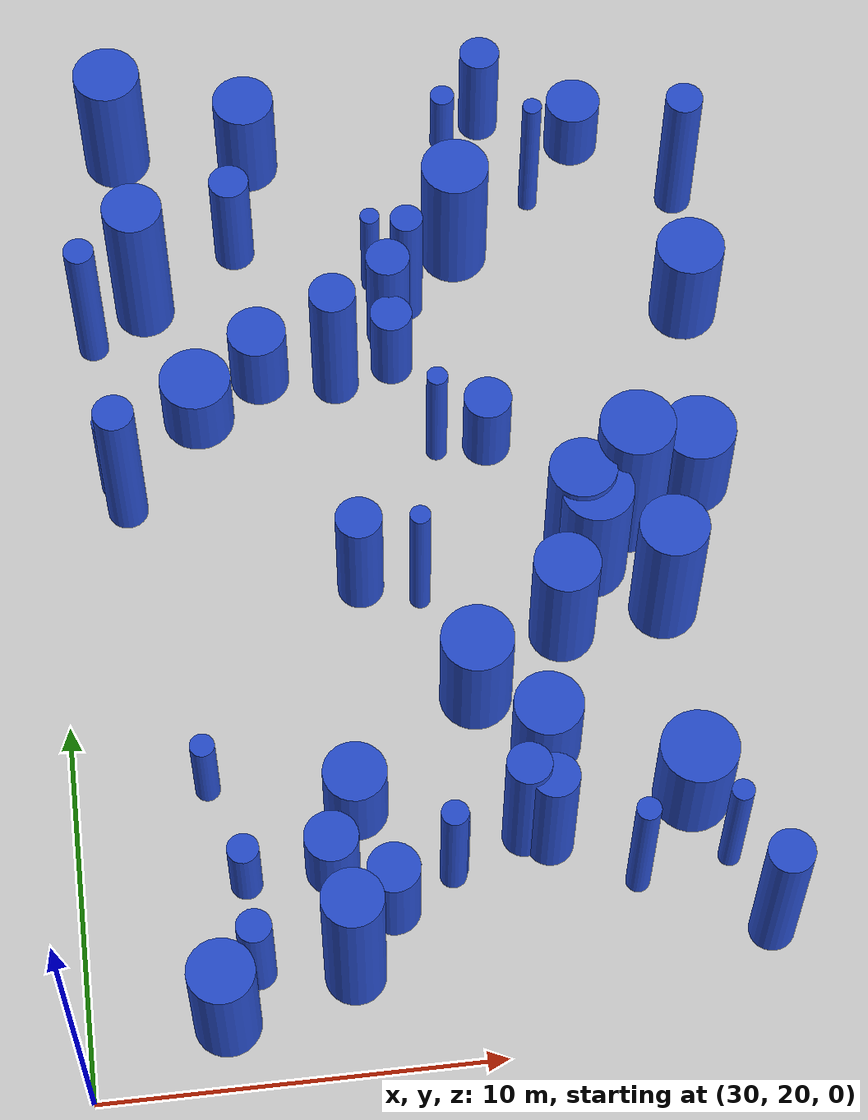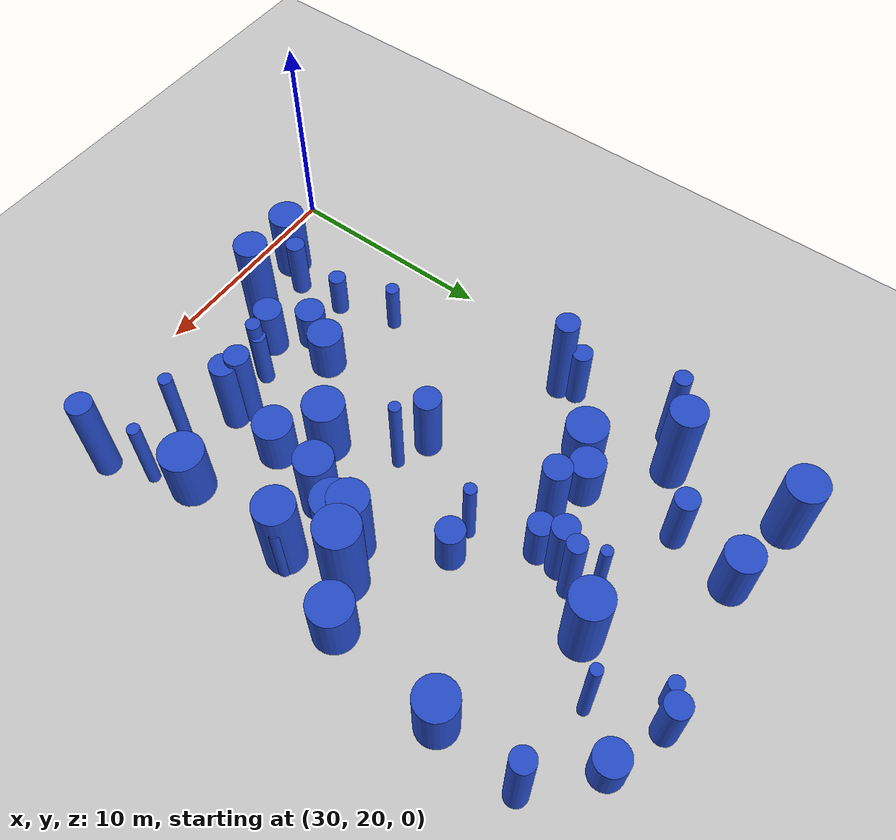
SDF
<sdf version="1.6">
 <world name="default">
  <model name="ground_plane">
   <static>1</static>
   <link name="link">
    <collision name="collision">
     <geometry><plane><normal>0 0 1</normal><size>100 100</size></plane></geometry>
     <surface><friction><ode><mu>100</mu><mu2>50</mu2></ode></friction></surface>
    </collision>
    <visual name="visual">
     <cast_shadows>0</cast_shadows>
     <geometry><plane><normal>0 0 1</normal><size>100 100</size></plane></geometry>
     <material>
      <script><uri>file://media/materials/scripts/gazebo.material</uri><name>Gazebo/Grey</name></script>
     </material>
    </visual>
   </link>
  </model>
  <model name="2">
   <static>0</static>
   <link name="link">
    <inertial>
     <mass>2</mass>
     <inertia><ixx>1.9179</ixx><ixy>0</ixy><ixz>0</ixz><iyy>1.9179</iyy><iyz>0</iyz><izz>0.974837</izz></inertia>
    </inertial>
    <collision name="collision">
     <geometry><cylinder><length>2.92966</length><radius>0.987338</radius></cylinder></geometry>
     <surface><contact><collide_without_contact>1</collide_without_contact></contact></surface>
    </collision>
    <visual name="visual">
     <geometry><cylinder><length>2.92966</length><radius>0.987338</radius></cylinder></geometry>
     <material>
      <script><uri>file://media/materials/scripts/gazebo.material</uri><name>Gazebo/Blue</name></script>
     </material>
    </visual>
    <gravity>0</gravity>
   </link>
   <pose>45.4163 26.3645 1.46483 0 -0 0</pose>
  </model>
  <model name="8">
   <static>0</static>
   <link name="link">
    <inertial>
     <mass>2</mass>
     <inertia><ixx>3.23009</ixx><ixy>0</ixy><ixz>0</ixz><iyy>3.23009</iyy><iyz>0</iyz><izz>0.313267</izz></inertia>
    </inertial>
    <collision name="collision">
     <geometry><cylinder><length>4.29427</length><radius>0.559703</radius></cylinder></geometry>
     <surface><contact><collide_without_contact>1</collide_without_contact></contact></surface>
    </collision>
    <visual name="visual">
     <geometry><cylinder><length>4.29427</length><radius>0.559703</radius></cylinder></geometry>
     <material>
      <script><uri>file://media/materials/scripts/gazebo.material</uri><name>Gazebo/Blue</name></script>
     </material>
    </visual>
    <gravity>0</gravity>
   </link>
   <pose>41.0947 25.7566 2.14713 0 -0 0</pose>
  </model>
  <model name="13">
   <static>0</static>
   <link name="link">
    <inertial>
     <mass>2</mass>
     <inertia><ixx>2.5994</ixx><ixy>0</ixy><ixz>0</ixz><iyy>2.5994</iyy><iyz>0</iyz><izz>0.0800748</izz></inertia>
    </inertial>
    <collision name="collision">
     <geometry><cylinder><length>3.91869</length><radius>0.282975</radius></cylinder></geometry>
     <surface><contact><collide_without_contact>1</collide_without_contact></contact></surface>
    </collision>
    <visual name="visual">
     <geometry><cylinder><length>3.91869</length><radius>0.282975</radius></cylinder></geometry>
     <material>
      <script><uri>file://media/materials/scripts/gazebo.material</uri><name>Gazebo/Blue</name></script>
     </material>
    </visual>
    <gravity>0</gravity>
   </link>
   <pose>46.0991 24.6597 1.95935 0 -0 0</pose>
  </model>
  <model name="15">
   <static>0</static>
   <link name="link">
    <inertial>
     <mass>2</mass>
     <inertia><ixx>4.38283</ixx><ixy>0</ixy><ixz>0</ixz><iyy>4.38283</iyy><iyz>0</iyz><izz>0.572271</izz></inertia>
    </inertial>
    <collision name="collision">
     <geometry><cylinder><length>4.95784</length><radius>0.756486</radius></cylinder></geometry>
     <surface><contact><collide_without_contact>1</collide_without_contact></contact></surface>
    </collision>
    <visual name="visual">
     <geometry><cylinder><length>4.95784</length><radius>0.756486</radius></cylinder></geometry>
     <material>
      <script><uri>file://media/materials/scripts/gazebo.material</uri><name>Gazebo/Blue</name></script>
     </material>
    </visual>
    <gravity>0</gravity>
   </link>
   <pose>36.5323 22.5346 2.47892 0 -0 0</pose>
  </model>
  <model name="23">
   <static>0</static>
   <link name="link">
    <inertial>
     <mass>2</mass>
     <inertia><ixx>3.04938</ixx><ixy>0</ixy><ixz>0</ixz><iyy>3.04938</iyy><iyz>0</iyz><izz>0.188982</izz></inertia>
    </inertial>
    <collision name="collision">
     <geometry><cylinder><length>4.21062</length><radius>0.434721</radius></cylinder></geometry>
     <surface><contact><collide_without_contact>1</collide_without_contact></contact></surface>
    </collision>
    <visual name="visual">
     <geometry><cylinder><length>4.21062</length><radius>0.434721</radius></cylinder></geometry>
     <material>
      <script><uri>file://media/materials/scripts/gazebo.material</uri><name>Gazebo/Blue</name></script>
     </material>
    </visual>
    <gravity>0</gravity>
   </link>
   <pose>39.9557 41.882 2.10531 0 -0 0</pose>
  </model>
  <model name="27">
   <static>0</static>
   <link name="link">
    <inertial>
     <mass>2</mass>
     <inertia><ixx>2.24556</ixx><ixy>0</ixy><ixz>0</ixz><iyy>2.24556</iyy><iyz>0</iyz><izz>0.865007</izz></inertia>
    </inertial>
    <collision name="collision">
     <geometry><cylinder><length>3.29823</length><radius>0.930057</radius></cylinder></geometry>
     <surface><contact><collide_without_contact>1</collide_without_contact></contact></surface>
    </collision>
    <visual name="visual">
     <geometry><cylinder><length>3.29823</length><radius>0.930057</radius></cylinder></geometry>
     <material>
      <script><uri>file://media/materials/scripts/gazebo.material</uri><name>Gazebo/Blue</name></script>
     </material>
    </visual>
    <gravity>0</gravity>
   </link>
   <pose>40.362 29.7446 1.64912 0 -0 0</pose>
  </model>
  <model name="31">
   <static>0</static>
   <link name="link">
    <inertial>
     <mass>2</mass>
     <inertia><ixx>2.46305</ixx><ixy>0</ixy><ixz>0</ixz><iyy>2.46305</iyy><iyz>0</iyz><izz>0.114316</izz></inertia>
    </inertial>
    <collision name="collision">
     <geometry><cylinder><length>3.79939</length><radius>0.338106</radius></cylinder></geometry>
     <surface><contact><collide_without_contact>1</collide_without_contact></contact></surface>
    </collision>
    <visual name="visual">
     <geometry><cylinder><length>3.79939</length><radius>0.338106</radius></cylinder></geometry>
     <material>
      <script><uri>file://media/materials/scripts/gazebo.material</uri><name>Gazebo/Blue</name></script>
     </material>
    </visual>
    <gravity>0</gravity>
   </link>
   <pose>39.2114 24.8963 1.89969 0 -0 0</pose>
  </model>
  <model name="40">
   <static>0</static>
   <link name="link">
    <inertial>
     <mass>2</mass>
     <inertia><ixx>2.09955</ixx><ixy>0</ixy><ixz>0</ixz><iyy>2.09955</iyy><iyz>0</iyz><izz>0.83864</izz></inertia>
    </inertial>
    <collision name="collision">
     <geometry><cylinder><length>3.17512</length><radius>0.915773</radius></cylinder></geometry>
     <surface><contact><collide_without_contact>1</collide_without_contact></contact></surface>
    </collision>
    <visual name="visual">
     <geometry><cylinder><length>3.17512</length><radius>0.915773</radius></cylinder></geometry>
     <material>
      <script><uri>file://media/materials/scripts/gazebo.material</uri><name>Gazebo/Blue</name></script>
     </material>
    </visual>
    <gravity>0</gravity>
   </link>
   <pose>47.4771 40.8684 1.58756 0 -0 0</pose>
  </model>
  <model name="49">
   <static>0</static>
   <link name="link">
    <inertial>
     <mass>2</mass>
     <inertia><ixx>1.4206</ixx><ixy>0</ixy><ixz>0</ixz><iyy>1.4206</iyy><iyz>0</iyz><izz>0.438407</izz></inertia>
    </inertial>
    <collision name="collision">
     <geometry><cylinder><length>2.68485</length><radius>0.662123</radius></cylinder></geometry>
     <surface><contact><collide_without_contact>1</collide_without_contact></contact></surface>
    </collision>
    <visual name="visual">
     <geometry><cylinder><length>2.68485</length><radius>0.662123</radius></cylinder></geometry>
     <material>
      <script><uri>file://media/materials/scripts/gazebo.material</uri><name>Gazebo/Blue</name></script>
     </material>
    </visual>
    <gravity>0</gravity>
   </link>
   <pose>37.6585 24.1439 1.34242 0 -0 0</pose>
  </model>
  <model name="50">
   <static>0</static>
   <link name="link">
    <inertial>
     <mass>2</mass>
     <inertia><ixx>3.40213</ixx><ixy>0</ixy><ixz>0</ixz><iyy>3.40213</iyy><iyz>0</iyz><izz>0.758243</izz></inertia>
    </inertial>
    <collision name="collision">
     <geometry><cylinder><length>4.25888</length><radius>0.870771</radius></cylinder></geometry>
     <surface><contact><collide_without_contact>1</collide_without_contact></contact></surface>
    </collision>
    <visual name="visual">
     <geometry><cylinder><length>4.25888</length><radius>0.870771</radius></cylinder></geometry>
     <material>
      <script><uri>file://media/materials/scripts/gazebo.material</uri><name>Gazebo/Blue</name></script>
     </material>
    </visual>
    <gravity>0</gravity>
   </link>
   <pose>43.5227 33.7385 2.12944 0 -0 0</pose>
  </model>
  <model name="57">
   <static>0</static>
   <link name="link">
    <inertial>
     <mass>2</mass>
     <inertia><ixx>3.68836</ixx><ixy>0</ixy><ixz>0</ixz><iyy>3.68836</iyy><iyz>0</iyz><izz>0.162309</izz></inertia>
    </inertial>
    <collision name="collision">
     <geometry><cylinder><length>4.65223</length><radius>0.402876</radius></cylinder></geometry>
     <surface><contact><collide_without_contact>1</collide_without_contact></contact></surface>
    </collision>
    <visual name="visual">
     <geometry><cylinder><length>4.65223</length><radius>0.402876</radius></cylinder></geometry>
     <material>
      <script><uri>file://media/materials/scripts/gazebo.material</uri><name>Gazebo/Blue</name></script>
     </material>
    </visual>
    <gravity>0</gravity>
   </link>
   <pose>31.3037 41.4852 2.32611 0 -0 0</pose>
  </model>
  <model name="61">
   <static>0</static>
   <link name="link">
    <inertial>
     <mass>2</mass>
     <inertia><ixx>1.26514</ixx><ixy>0</ixy><ixz>0</ixz><iyy>1.26514</iyy><iyz>0</iyz><izz>0.651756</izz></inertia>
    </inertial>
    <collision name="collision">
     <geometry><cylinder><length>2.37394</length><radius>0.807314</radius></cylinder></geometry>
     <surface><contact><collide_without_contact>1</collide_without_contact></contact></surface>
    </collision>
    <visual name="visual">
     <geometry><cylinder><length>2.37394</length><radius>0.807314</radius></cylinder></geometry>
     <material>
      <script><uri>file://media/materials/scripts/gazebo.material</uri><name>Gazebo/Blue</name></script>
     </material>
    </visual>
    <gravity>0</gravity>
   </link>
   <pose>36.9963 26.9063 1.18697 0 -0 0</pose>
  </model>
  <model name="62">
   <static>0</static>
   <link name="link">
    <inertial>
     <mass>2</mass>
     <inertia><ixx>4.60937</ixx><ixy>0</ixy><ixz>0</ixz><iyy>4.60937</iyy><iyz>0</iyz><izz>0.935499</izz></inertia>
    </inertial>
    <collision name="collision">
     <geometry><cylinder><length>4.98495</length><radius>0.967212</radius></cylinder></geometry>
     <surface><contact><collide_without_contact>1</collide_without_contact></contact></surface>
    </collision>
    <visual name="visual">
     <geometry><cylinder><length>4.98495</length><radius>0.967212</radius></cylinder></geometry>
     <material>
      <script><uri>file://media/materials/scripts/gazebo.material</uri><name>Gazebo/Blue</name></script>
     </material>
    </visual>
    <gravity>0</gravity>
   </link>
   <pose>44.9759 34.4635 2.49248 0 -0 0</pose>
  </model>
  <model name="68">
   <static>0</static>
   <link name="link">
    <inertial>
     <mass>2</mass>
     <inertia>
      <ixx>3.19713</ixx>
      <ixy>0</ixy>
      <ixz>0</ixz>
      <iyy>3.19713</iyy>
      <iyz>0</iyz>
      <izz>0.0925744</izz>
     </inertia>
    </inertial>
    <collision name="collision">
     <geometry><cylinder><length>4.34799</length><radius>0.30426</radius></cylinder></geometry>
     <surface><contact><collide_without_contact>1</collide_without_contact></contact></surface>
    </collision>
    <visual name="visual">
     <geometry><cylinder><length>4.34799</length><radius>0.30426</radius></cylinder></geometry>
     <material>
      <script><uri>file://media/materials/scripts/gazebo.material</uri><name>Gazebo/Blue</name></script>
     </material>
    </visual>
    <gravity>0</gravity>
   </link>
   <pose>43.7363 24.2398 2.174 0 -0 0</pose>
  </model>
  <model name="69">
   <static>0</static>
   <link name="link">
    <inertial>
     <mass>2</mass>
     <inertia>
      <ixx>3.33102</ixx>
      <ixy>0</ixy>
      <ixz>0</ixz>
      <iyy>3.33102</iyy>
      <iyz>0</iyz>
      <izz>0.0721919</izz>
     </inertia>
    </inertial>
    <collision name="collision">
     <geometry><cylinder><length>4.4463</length><radius>0.268686</radius></cylinder></geometry>
     <surface><contact><collide_without_contact>1</collide_without_contact></contact></surface>
    </collision>
    <visual name="visual">
     <geometry><cylinder><length>4.4463</length><radius>0.268686</radius></cylinder></geometry>
     <material>
      <script><uri>file://media/materials/scripts/gazebo.material</uri><name>Gazebo/Blue</name></script>
     </material>
    </visual>
    <gravity>0</gravity>
   </link>
   <pose>39.2791 32.7325 2.22315 0 -0 0</pose>
  </model>
  <model name="70">
   <static>0</static>
   <link name="link">
    <inertial>
     <mass>2</mass>
     <inertia><ixx>4.21383</ixx><ixy>0</ixy><ixz>0</ixz><iyy>4.21383</iyy><iyz>0</iyz><izz>0.281293</izz></inertia>
    </inertial>
    <collision name="collision">
     <geometry><cylinder><length>4.94359</length><radius>0.53037</radius></cylinder></geometry>
     <surface><contact><collide_without_contact>1</collide_without_contact></contact></surface>
    </collision>
    <visual name="visual">
     <geometry><cylinder><length>4.94359</length><radius>0.53037</radius></cylinder></geometry>
     <material>
      <script><uri>file://media/materials/scripts/gazebo.material</uri><name>Gazebo/Blue</name></script>
     </material>
    </visual>
    <gravity>0</gravity>
   </link>
   <pose>31.894 36.255 2.4718 0 -0 0</pose>
  </model>
  <model name="72">
   <static>0</static>
   <link name="link">
    <inertial>
     <mass>2</mass>
     <inertia><ixx>1.94318</ixx><ixy>0</ixy><ixz>0</ixz><iyy>1.94318</iyy><iyz>0</iyz><izz>0.697491</izz></inertia>
    </inertial>
    <collision name="collision">
     <geometry><cylinder><length>3.093</length><radius>0.835159</radius></cylinder></geometry>
     <surface><contact><collide_without_contact>1</collide_without_contact></contact></surface>
    </collision>
    <visual name="visual">
     <geometry><cylinder><length>3.093</length><radius>0.835159</radius></cylinder></geometry>
     <material>
      <script><uri>file://media/materials/scripts/gazebo.material</uri><name>Gazebo/Blue</name></script>
     </material>
    </visual>
    <gravity>0</gravity>
   </link>
   <pose>36.0041 47.1064 1.5465 0 -0 0</pose>
  </model>
  <model name="78">
   <static>0</static>
   <link name="link">
    <inertial>
     <mass>2</mass>
     <inertia><ixx>1.37906</ixx><ixy>0</ixy><ixz>0</ixz><iyy>1.37906</iyy><iyz>0</iyz><izz>0.787408</izz></inertia>
    </inertial>
    <collision name="collision">
     <geometry><cylinder><length>2.43149</length><radius>0.88736</radius></cylinder></geometry>
     <surface><contact><collide_without_contact>1</collide_without_contact></contact></surface>
    </collision>
    <visual name="visual">
     <geometry><cylinder><length>2.43149</length><radius>0.88736</radius></cylinder></geometry>
     <material>
      <script><uri>file://media/materials/scripts/gazebo.material</uri><name>Gazebo/Blue</name></script>
     </material>
    </visual>
    <gravity>0</gravity>
   </link>
   <pose>41.9661 28.1877 1.21574 0 -0 0</pose>
  </model>
  <model name="83">
   <static>0</static>
   <link name="link">
    <inertial>
     <mass>2</mass>
     <inertia>
      <ixx>1.18192</ixx>
      <ixy>0</ixy>
      <ixz>0</ixz>
      <iyy>1.18192</iyy>
      <iyz>0</iyz>
      <izz>0.0996263</izz>
     </inertia>
    </inertial>
    <collision name="collision">
     <geometry><cylinder><length>2.60627</length><radius>0.315636</radius></cylinder></geometry>
     <surface><contact><collide_without_contact>1</collide_without_contact></contact></surface>
    </collision>
    <visual name="visual">
     <geometry><cylinder><length>2.60627</length><radius>0.315636</radius></cylinder></geometry>
     <material>
      <script><uri>file://media/materials/scripts/gazebo.material</uri><name>Gazebo/Blue</name></script>
     </material>
    </visual>
    <gravity>0</gravity>
   </link>
   <pose>33.3435 27.9145 1.30313 0 -0 0</pose>
  </model>
  <model name="84">
   <static>0</static>
   <link name="link">
    <inertial>
     <mass>2</mass>
     <inertia>
      <ixx>0.948793</ixx>
      <ixy>0</ixy>
      <ixz>0</ixz>
      <iyy>0.948793</iyy>
      <iyz>0</iyz>
      <izz>0.560921</izz>
     </inertia>
    </inertial>
    <collision name="collision">
     <geometry><cylinder><length>2.0025</length><radius>0.748947</radius></cylinder></geometry>
     <surface><contact><collide_without_contact>1</collide_without_contact></contact></surface>
    </collision>
    <visual name="visual">
     <geometry><cylinder><length>2.0025</length><radius>0.748947</radius></cylinder></geometry>
     <material>
      <script><uri>file://media/materials/scripts/gazebo.material</uri><name>Gazebo/Blue</name></script>
     </material>
    </visual>
    <gravity>0</gravity>
   </link>
   <pose>45.1969 46.9008 1.00125 0 -0 0</pose>
  </model>
  <model name="86">
   <static>0</static>
   <link name="link">
    <inertial>
     <mass>2</mass>
     <inertia><ixx>3.99202</ixx><ixy>0</ixy><ixz>0</ixz><iyy>3.99202</iyy><iyz>0</iyz><izz>0.325861</izz></inertia>
    </inertial>
    <collision name="collision">
     <geometry><cylinder><length>4.79318</length><radius>0.570843</radius></cylinder></geometry>
     <surface><contact><collide_without_contact>1</collide_without_contact></contact></surface>
    </collision>
    <visual name="visual">
     <geometry><cylinder><length>4.79318</length><radius>0.570843</radius></cylinder></geometry>
     <material>
      <script><uri>file://media/materials/scripts/gazebo.material</uri><name>Gazebo/Blue</name></script>
     </material>
    </visual>
    <gravity>0</gravity>
   </link>
   <pose>46.811 22.6045 2.39659 0 -0 0</pose>
  </model>
  <model name="89">
   <static>0</static>
   <link name="link">
    <inertial>
     <mass>2</mass>
     <inertia><ixx>3.50767</ixx><ixy>0</ixy><ixz>0</ixz><iyy>3.50767</iyy><iyz>0</iyz><izz>0.380322</izz></inertia>
    </inertial>
    <collision name="collision">
     <geometry><cylinder><length>4.46151</length><radius>0.616703</radius></cylinder></geometry>
     <surface><contact><collide_without_contact>1</collide_without_contact></contact></surface>
    </collision>
    <visual name="visual">
     <geometry><cylinder><length>4.46151</length><radius>0.616703</radius></cylinder></geometry>
     <material>
      <script><uri>file://media/materials/scripts/gazebo.material</uri><name>Gazebo/Blue</name></script>
     </material>
    </visual>
    <gravity>0</gravity>
   </link>
   <pose>37.7575 39.5745 2.23075 0 -0 0</pose>
  </model>
  <model name="92">
   <static>0</static>
   <link name="link">
    <inertial>
     <mass>2</mass>
     <inertia><ixx>1.69072</ixx><ixy>0</ixy><ixz>0</ixz><iyy>1.69072</iyy><iyz>0</iyz><izz>0.127981</izz></inertia>
    </inertial>
    <collision name="collision">
     <geometry><cylinder><length>3.12416</length><radius>0.357744</radius></cylinder></geometry>
     <surface><contact><collide_without_contact>1</collide_without_contact></contact></surface>
    </collision>
    <visual name="visual">
     <geometry><cylinder><length>3.12416</length><radius>0.357744</radius></cylinder></geometry>
     <material>
      <script><uri>file://media/materials/scripts/gazebo.material</uri><name>Gazebo/Blue</name></script>
     </material>
    </visual>
    <gravity>0</gravity>
   </link>
   <pose>39.2593 25.0883 1.56208 0 -0 0</pose>
  </model>
  <model name="96">
   <static>0</static>
   <link name="link">
    <inertial>
     <mass>2</mass>
     <inertia>
      <ixx>0.805174</ixx>
      <ixy>0</ixy>
      <ixz>0</ixz>
      <iyy>0.805174</iyy>
      <iyz>0</iyz>
      <izz>0.112576</izz>
     </inertia>
    </inertial>
    <collision name="collision">
     <geometry><cylinder><length>2.11975</length><radius>0.335523</radius></cylinder></geometry>
     <surface><contact><collide_without_contact>1</collide_without_contact></contact></surface>
    </collision>
    <visual name="visual">
     <geometry><cylinder><length>2.11975</length><radius>0.335523</radius></cylinder></geometry>
     <material>
      <script><uri>file://media/materials/scripts/gazebo.material</uri><name>Gazebo/Blue</name></script>
     </material>
    </visual>
    <gravity>0</gravity>
   </link>
   <pose>41.5792 47.4205 1.05987 0 -0 0</pose>
  </model>
  <model name="97">
   <static>0</static>
   <link name="link">
    <inertial>
     <mass>2</mass>
     <inertia><ixx>2.78191</ixx><ixy>0</ixy><ixz>0</ixz><iyy>2.78191</iyy><iyz>0</iyz><izz>0.727916</izz></inertia>
    </inertial>
    <collision name="collision">
     <geometry><cylinder><length>3.8089</length><radius>0.85318</radius></cylinder></geometry>
     <surface><contact><collide_without_contact>1</collide_without_contact></contact></surface>
    </collision>
    <visual name="visual">
     <geometry><cylinder><length>3.8089</length><radius>0.85318</radius></cylinder></geometry>
     <material>
      <script><uri>file://media/materials/scripts/gazebo.material</uri><name>Gazebo/Blue</name></script>
     </material>
    </visual>
    <gravity>0</gravity>
   </link>
   <pose>42.8043 31.3367 1.90445 0 -0 0</pose>
  </model>
  <model name="100">
   <static>0</static>
   <link name="link">
    <inertial>
     <mass>2</mass>
     <inertia><ixx>3.16988</ixx><ixy>0</ixy><ixz>0</ixz><iyy>3.16988</iyy><iyz>0</iyz><izz>0.863339</izz></inertia>
    </inertial>
    <collision name="collision">
     <geometry><cylinder><length>4.0533</length><radius>0.92916</radius></cylinder></geometry>
     <surface><contact><collide_without_contact>1</collide_without_contact></contact></surface>
    </collision>
    <visual name="visual">
     <geometry><cylinder><length>4.0533</length><radius>0.92916</radius></cylinder></geometry>
     <material>
      <script><uri>file://media/materials/scripts/gazebo.material</uri><name>Gazebo/Blue</name></script>
     </material>
    </visual>
    <gravity>0</gravity>
   </link>
   <pose>43.8295 33.189 2.02665 0 -0 0</pose>
  </model>
  <model name="110">
   <static>0</static>
   <link name="link">
    <inertial>
     <mass>2</mass>
     <inertia>
      <ixx>0.975709</ixx>
      <ixy>0</ixy>
      <ixz>0</ixz>
      <iyy>0.975709</iyy>
      <iyz>0</iyz>
      <izz>0.463209</izz>
     </inertia>
    </inertial>
    <collision name="collision">
     <geometry><cylinder><length>2.11297</length><radius>0.680595</radius></cylinder></geometry>
     <surface><contact><collide_without_contact>1</collide_without_contact></contact></surface>
    </collision>
    <visual name="visual">
     <geometry><cylinder><length>2.11297</length><radius>0.680595</radius></cylinder></geometry>
     <material>
      <script><uri>file://media/materials/scripts/gazebo.material</uri><name>Gazebo/Blue</name></script>
     </material>
    </visual>
    <gravity>0</gravity>
   </link>
   <pose>36.2589 25.3789 1.05648 0 -0 0</pose>
  </model>
  <model name="118">
   <static>0</static>
   <link name="link">
    <inertial>
     <mass>2</mass>
     <inertia>
      <ixx>2.41426</ixx>
      <ixy>0</ixy>
      <ixz>0</ixz>
      <iyy>2.41426</iyy>
      <iyz>0</iyz>
      <izz>0.0775708</izz>
     </inertia>
    </inertial>
    <collision name="collision">
     <geometry><cylinder><length>3.77529</length><radius>0.278515</radius></cylinder></geometry>
     <surface><contact><collide_without_contact>1</collide_without_contact></contact></surface>
    </collision>
    <visual name="visual">
     <geometry><cylinder><length>3.77529</length><radius>0.278515</radius></cylinder></geometry>
     <material>
      <script><uri>file://media/materials/scripts/gazebo.material</uri><name>Gazebo/Blue</name></script>
     </material>
    </visual>
    <gravity>0</gravity>
   </link>
   <pose>40.2269 37.1675 1.88765 0 -0 0</pose>
  </model>
  <model name="120">
   <static>0</static>
   <link name="link">
    <inertial>
     <mass>2</mass>
     <inertia><ixx>1.66295</ixx><ixy>0</ixy><ixz>0</ixz><iyy>1.66295</iyy><iyz>0</iyz><izz>0.191396</izz></inertia>
    </inertial>
    <collision name="collision">
     <geometry><cylinder><length>3.06652</length><radius>0.437488</radius></cylinder></geometry>
     <surface><contact><collide_without_contact>1</collide_without_contact></contact></surface>
    </collision>
    <visual name="visual">
     <geometry><cylinder><length>3.06652</length><radius>0.437488</radius></cylinder></geometry>
     <material>
      <script><uri>file://media/materials/scripts/gazebo.material</uri><name>Gazebo/Blue</name></script>
     </material>
    </visual>
    <gravity>0</gravity>
   </link>
   <pose>34.1961 22.8748 1.53326 0 -0 0</pose>
  </model>
  <model name="122">
   <static>0</static>
   <link name="link">
    <inertial>
     <mass>2</mass>
     <inertia><ixx>1.78541</ixx><ixy>0</ixy><ixz>0</ixz><iyy>1.78541</iyy><iyz>0</iyz><izz>0.954322</izz></inertia>
    </inertial>
    <collision name="collision">
     <geometry><cylinder><length>2.8017</length><radius>0.976894</radius></cylinder></geometry>
     <surface><contact><collide_without_contact>1</collide_without_contact></contact></surface>
    </collision>
    <visual name="visual">
     <geometry><cylinder><length>2.8017</length><radius>0.976894</radius></cylinder></geometry>
     <material>
      <script><uri>file://media/materials/scripts/gazebo.material</uri><name>Gazebo/Blue</name></script>
     </material>
    </visual>
    <gravity>0</gravity>
   </link>
   <pose>46.8718 35.4481 1.40085 0 -0 0</pose>
  </model>
  <model name="134">
   <static>0</static>
   <link name="link">
    <inertial>
     <mass>2</mass>
     <inertia><ixx>2.42735</ixx><ixy>0</ixy><ixz>0</ixz><iyy>2.42735</iyy><iyz>0</iyz><izz>0.342951</izz></inertia>
    </inertial>
    <collision name="collision">
     <geometry><cylinder><length>3.67903</length><radius>0.58562</radius></cylinder></geometry>
     <surface><contact><collide_without_contact>1</collide_without_contact></contact></surface>
    </collision>
    <visual name="visual">
     <geometry><cylinder><length>3.67903</length><radius>0.58562</radius></cylinder></geometry>
     <material>
      <script><uri>file://media/materials/scripts/gazebo.material</uri><name>Gazebo/Blue</name></script>
     </material>
    </visual>
    <gravity>0</gravity>
   </link>
   <pose>39.3621 41.0642 1.83951 0 -0 0</pose>
  </model>
  <model name="136">
   <static>0</static>
   <link name="link">
    <inertial>
     <mass>2</mass>
     <inertia><ixx>4.39167</ixx><ixy>0</ixy><ixz>0</ixz><iyy>4.39167</iyy><iyz>0</iyz><izz>0.6339</izz></inertia>
    </inertial>
    <collision name="collision">
     <geometry><cylinder><length>4.94452</length><radius>0.796178</radius></cylinder></geometry>
     <surface><contact><collide_without_contact>1</collide_without_contact></contact></surface>
    </collision>
    <visual name="visual">
     <geometry><cylinder><length>4.94452</length><radius>0.796178</radius></cylinder></geometry>
     <material>
      <script><uri>file://media/materials/scripts/gazebo.material</uri><name>Gazebo/Blue</name></script>
     </material>
    </visual>
    <gravity>0</gravity>
   </link>
   <pose>32.7787 42.5001 2.47226 0 -0 0</pose>
  </model>
  <model name="139">
   <static>0</static>
   <link name="link">
    <inertial>
     <mass>2</mass>
     <inertia><ixx>1.8432</ixx><ixy>0</ixy><ixz>0</ixz><iyy>1.8432</iyy><iyz>0</iyz><izz>0.213005</izz></inertia>
    </inertial>
    <collision name="collision">
     <geometry><cylinder><length>3.22803</length><radius>0.461524</radius></cylinder></geometry>
     <surface><contact><collide_without_contact>1</collide_without_contact></contact></surface>
    </collision>
    <visual name="visual">
     <geometry><cylinder><length>3.22803</length><radius>0.461524</radius></cylinder></geometry>
     <material>
      <script><uri>file://media/materials/scripts/gazebo.material</uri><name>Gazebo/Blue</name></script>
     </material>
    </visual>
    <gravity>0</gravity>
   </link>
   <pose>31.7018 37.0647 1.61402 0 -0 0</pose>
  </model>
  <model name="157">
   <static>0</static>
   <link name="link">
    <inertial>
     <mass>2</mass>
     <inertia><ixx>1.74429</ixx><ixy>0</ixy><ixz>0</ixz><iyy>1.74429</iyy><iyz>0</iyz><izz>0.06803</izz></inertia>
    </inertial>
    <collision name="collision">
     <geometry><cylinder><length>3.20338</length><radius>0.260826</radius></cylinder></geometry>
     <surface><contact><collide_without_contact>1</collide_without_contact></contact></surface>
    </collision>
    <visual name="visual">
     <geometry><cylinder><length>3.20338</length><radius>0.260826</radius></cylinder></geometry>
     <material>
      <script><uri>file://media/materials/scripts/gazebo.material</uri><name>Gazebo/Blue</name></script>
     </material>
    </visual>
    <gravity>0</gravity>
   </link>
   <pose>39.0614 42.7773 1.60169 0 -0 0</pose>
  </model>
  <model name="160">
   <static>0</static>
   <link name="link">
    <inertial>
     <mass>2</mass>
     <inertia>
      <ixx>3.30693</ixx>
      <ixy>0</ixy>
      <ixz>0</ixz>
      <iyy>3.30693</iyy>
      <iyz>0</iyz>
      <izz>0.0667191</izz>
     </inertia>
    </inertial>
    <collision name="collision">
     <geometry><cylinder><length>4.43187</length><radius>0.2583</radius></cylinder></geometry>
     <surface><contact><collide_without_contact>1</collide_without_contact></contact></surface>
    </collision>
    <visual name="visual">
     <geometry><cylinder><length>4.43187</length><radius>0.2583</radius></cylinder></geometry>
     <material>
      <script><uri>file://media/materials/scripts/gazebo.material</uri><name>Gazebo/Blue</name></script>
     </material>
    </visual>
    <gravity>0</gravity>
   </link>
   <pose>43.7187 45.0025 2.21593 0 -0 0</pose>
  </model>
  <model name="168">
   <static>0</static>
   <link name="link">
    <inertial>
     <mass>2</mass>
     <inertia><ixx>2.93272</ixx><ixy>0</ixy><ixz>0</ixz><iyy>2.93272</iyy><iyz>0</iyz><izz>0.354754</izz></inertia>
    </inertial>
    <collision name="collision">
     <geometry><cylinder><length>4.06596</length><radius>0.595613</radius></cylinder></geometry>
     <surface><contact><collide_without_contact>1</collide_without_contact></contact></surface>
    </collision>
    <visual name="visual">
     <geometry><cylinder><length>4.06596</length><radius>0.595613</radius></cylinder></geometry>
     <material>
      <script><uri>file://media/materials/scripts/gazebo.material</uri><name>Gazebo/Blue</name></script>
     </material>
    </visual>
    <gravity>0</gravity>
   </link>
   <pose>41.704 25.48 2.03298 0 -0 0</pose>
  </model>
  <model name="177">
   <static>0</static>
   <link name="link">
    <inertial>
     <mass>2</mass>
     <inertia><ixx>3.68104</ixx><ixy>0</ixy><ixz>0</ixz><iyy>3.68104</iyy><iyz>0</iyz><izz>0.250635</izz></inertia>
    </inertial>
    <collision name="collision">
     <geometry><cylinder><length>4.61891</length><radius>0.500634</radius></cylinder></geometry>
     <surface><contact><collide_without_contact>1</collide_without_contact></contact></surface>
    </collision>
    <visual name="visual">
     <geometry><cylinder><length>4.61891</length><radius>0.500634</radius></cylinder></geometry>
     <material>
      <script><uri>file://media/materials/scripts/gazebo.material</uri><name>Gazebo/Blue</name></script>
     </material>
    </visual>
    <gravity>0</gravity>
   </link>
   <pose>47.8007 44.6703 2.30945 0 -0 0</pose>
  </model>
  <model name="183">
   <static>0</static>
   <link name="link">
    <inertial>
     <mass>2</mass>
     <inertia><ixx>1.14779</ixx><ixy>0</ixy><ixz>0</ixz><iyy>1.14779</iyy><iyz>0</iyz><izz>0.902778</izz></inertia>
    </inertial>
    <collision name="collision">
     <geometry><cylinder><length>2.04411</length><radius>0.950146</radius></cylinder></geometry>
     <surface><contact><collide_without_contact>1</collide_without_contact></contact></surface>
    </collision>
    <visual name="visual">
     <geometry><cylinder><length>2.04411</length><radius>0.950146</radius></cylinder></geometry>
     <material>
      <script><uri>file://media/materials/scripts/gazebo.material</uri><name>Gazebo/Blue</name></script>
     </material>
    </visual>
    <gravity>0</gravity>
   </link>
   <pose>33.9788 38.8893 1.02206 0 -0 0</pose>
  </model>
  <model name="188">
   <static>0</static>
   <link name="link">
    <inertial>
     <mass>2</mass>
     <inertia><ixx>2.07768</ixx><ixy>0</ixy><ixz>0</ixz><iyy>2.07768</iyy><iyz>0</iyz><izz>0.104098</izz></inertia>
    </inertial>
    <collision name="collision">
     <geometry><cylinder><length>3.48623</length><radius>0.322642</radius></cylinder></geometry>
     <surface><contact><collide_without_contact>1</collide_without_contact></contact></surface>
    </collision>
    <visual name="visual">
     <geometry><cylinder><length>3.48623</length><radius>0.322642</radius></cylinder></geometry>
     <material>
      <script><uri>file://media/materials/scripts/gazebo.material</uri><name>Gazebo/Blue</name></script>
     </material>
    </visual>
    <gravity>0</gravity>
   </link>
   <pose>46.0382 32.0862 1.74311 0 -0 0</pose>
  </model>
  <model name="202">
   <static>0</static>
   <link name="link">
    <inertial>
     <mass>2</mass>
     <inertia><ixx>1.27336</ixx><ixy>0</ixy><ixz>0</ixz><iyy>1.27336</iyy><iyz>0</iyz><izz>0.613847</izz></inertia>
    </inertial>
    <collision name="collision">
     <geometry><cylinder><length>2.40804</length><radius>0.783484</radius></cylinder></geometry>
     <surface><contact><collide_without_contact>1</collide_without_contact></contact></surface>
    </collision>
    <visual name="visual">
     <geometry><cylinder><length>2.40804</length><radius>0.783484</radius></cylinder></geometry>
     <material>
      <script><uri>file://media/materials/scripts/gazebo.material</uri><name>Gazebo/Blue</name></script>
     </material>
    </visual>
    <gravity>0</gravity>
   </link>
   <pose>35.7251 39.9542 1.20402 0 -0 0</pose>
  </model>
  <model name="203">
   <static>0</static>
   <link name="link">
    <inertial>
     <mass>2</mass>
     <inertia><ixx>1.3183</ixx><ixy>0</ixy><ixz>0</ixz><iyy>1.3183</iyy><iyz>0</iyz><izz>0.315438</izz></inertia>
    </inertial>
    <collision name="collision">
     <geometry><cylinder><length>2.63884</length><radius>0.561639</radius></cylinder></geometry>
     <surface><contact><collide_without_contact>1</collide_without_contact></contact></surface>
    </collision>
    <visual name="visual">
     <geometry><cylinder><length>2.63884</length><radius>0.561639</radius></cylinder></geometry>
     <material>
      <script><uri>file://media/materials/scripts/gazebo.material</uri><name>Gazebo/Blue</name></script>
     </material>
    </visual>
    <gravity>0</gravity>
   </link>
   <pose>39.3262 39.9824 1.31942 0 -0 0</pose>
  </model>
  <model name="204">
   <static>0</static>
   <link name="link">
    <inertial>
     <mass>2</mass>
     <inertia><ixx>3.0511</ixx><ixy>0</ixy><ixz>0</ixz><iyy>3.0511</iyy><iyz>0</iyz><izz>0.822115</izz></inertia>
    </inertial>
    <collision name="collision">
     <geometry><cylinder><length>3.97998</length><radius>0.906706</radius></cylinder></geometry>
     <surface><contact><collide_without_contact>1</collide_without_contact></contact></surface>
    </collision>
    <visual name="visual">
     <geometry><cylinder><length>3.97998</length><radius>0.906706</radius></cylinder></geometry>
     <material>
      <script><uri>file://media/materials/scripts/gazebo.material</uri><name>Gazebo/Blue</name></script>
     </material>
    </visual>
    <gravity>0</gravity>
   </link>
   <pose>32.3537 47.7258 1.98999 0 -0 0</pose>
  </model>
  <model name="209">
   <static>0</static>
   <link name="link">
    <inertial>
     <mass>2</mass>
     <inertia><ixx>3.66777</ixx><ixy>0</ixy><ixz>0</ixz><iyy>3.66777</iyy><iyz>0</iyz><izz>0.792332</izz></inertia>
    </inertial>
    <collision name="collision">
     <geometry><cylinder><length>4.43054</length><radius>0.890131</radius></cylinder></geometry>
     <surface><contact><collide_without_contact>1</collide_without_contact></contact></surface>
    </collision>
    <visual name="visual">
     <geometry><cylinder><length>4.43054</length><radius>0.890131</radius></cylinder></geometry>
     <material>
      <script><uri>file://media/materials/scripts/gazebo.material</uri><name>Gazebo/Blue</name></script>
     </material>
    </visual>
    <gravity>0</gravity>
   </link>
   <pose>45.5248 31.7344 2.21527 0 -0 0</pose>
  </model>
  <model name="210">
   <static>0</static>
   <link name="link">
    <inertial>
     <mass>2</mass>
     <inertia><ixx>2.45701</ixx><ixy>0</ixy><ixz>0</ixz><iyy>2.45701</iyy><iyz>0</iyz><izz>0.364356</izz></inertia>
    </inertial>
    <collision name="collision">
     <geometry><cylinder><length>3.69446</length><radius>0.603619</radius></cylinder></geometry>
     <surface><contact><collide_without_contact>1</collide_without_contact></contact></surface>
    </collision>
    <visual name="visual">
     <geometry><cylinder><length>3.69446</length><radius>0.603619</radius></cylinder></geometry>
     <material>
      <script><uri>file://media/materials/scripts/gazebo.material</uri><name>Gazebo/Blue</name></script>
     </material>
    </visual>
    <gravity>0</gravity>
   </link>
   <pose>37.7773 33.2498 1.84723 0 -0 0</pose>
  </model>
  <model name="215">
   <static>0</static>
   <link name="link">
    <inertial>
     <mass>2</mass>
     <inertia><ixx>1.90914</ixx><ixy>0</ixy><ixz>0</ixz><iyy>1.90914</iyy><iyz>0</iyz><izz>0.304107</izz></inertia>
    </inertial>
    <collision name="collision">
     <geometry><cylinder><length>3.24692</length><radius>0.551459</radius></cylinder></geometry>
     <surface><contact><collide_without_contact>1</collide_without_contact></contact></surface>
    </collision>
    <visual name="visual">
     <geometry><cylinder><length>3.24692</length><radius>0.551459</radius></cylinder></geometry>
     <material>
      <script><uri>file://media/materials/scripts/gazebo.material</uri><name>Gazebo/Blue</name></script>
     </material>
    </visual>
    <gravity>0</gravity>
   </link>
   <pose>42.6657 47.8916 1.62346 0 -0 0</pose>
  </model>
  <model name="228">
   <static>0</static>
   <link name="link">
    <inertial>
     <mass>2</mass>
     <inertia><ixx>2.44887</ixx><ixy>0</ixy><ixz>0</ixz><iyy>2.44887</iyy><iyz>0</iyz><izz>0.682109</izz></inertia>
    </inertial>
    <collision name="collision">
     <geometry><cylinder><length>3.55624</length><radius>0.825899</radius></cylinder></geometry>
     <surface><contact><collide_without_contact>1</collide_without_contact></contact></surface>
    </collision>
    <visual name="visual">
     <geometry><cylinder><length>3.55624</length><radius>0.825899</radius></cylinder></geometry>
     <material>
      <script><uri>file://media/materials/scripts/gazebo.material</uri><name>Gazebo/Blue</name></script>
     </material>
    </visual>
    <gravity>0</gravity>
   </link>
   <pose>33.3362 21.64 1.77812 0 -0 0</pose>
  </model>
  <model name="232">
   <static>0</static>
   <link name="link">
    <inertial>
     <mass>2</mass>
     <inertia><ixx>3.28948</ixx><ixy>0</ixy><ixz>0</ixz><iyy>3.28948</iyy><iyz>0</iyz><izz>0.82004</izz></inertia>
    </inertial>
    <collision name="collision">
     <geometry><cylinder><length>4.15653</length><radius>0.905561</radius></cylinder></geometry>
     <surface><contact><collide_without_contact>1</collide_without_contact></contact></surface>
    </collision>
    <visual name="visual">
     <geometry><cylinder><length>4.15653</length><radius>0.905561</radius></cylinder></geometry>
     <material>
      <script><uri>file://media/materials/scripts/gazebo.material</uri><name>Gazebo/Blue</name></script>
     </material>
    </visual>
    <gravity>0</gravity>
   </link>
   <pose>41.4418 43.4553 2.07826 0 -0 0</pose>
  </model>
  <model name="239">
   <static>0</static>
   <link name="link">
    <inertial>
     <mass>2</mass>
     <inertia><ixx>1.18252</ixx><ixy>0</ixy><ixz>0</ixz><iyy>1.18252</iyy><iyz>0</iyz><izz>0.405692</izz></inertia>
    </inertial>
    <collision name="collision">
     <geometry><cylinder><length>2.42447</length><radius>0.63694</radius></cylinder></geometry>
     <surface><contact><collide_without_contact>1</collide_without_contact></contact></surface>
    </collision>
    <visual name="visual">
     <geometry><cylinder><length>2.42447</length><radius>0.63694</radius></cylinder></geometry>
     <material>
      <script><uri>file://media/materials/scripts/gazebo.material</uri><name>Gazebo/Blue</name></script>
     </material>
    </visual>
    <gravity>0</gravity>
   </link>
   <pose>41.5753 37.2017 1.21224 0 -0 0</pose>
  </model>
  <model name="244">
   <static>0</static>
   <link name="link">
    <inertial>
     <mass>2</mass>
     <inertia>
      <ixx>0.921875</ixx>
      <ixy>0</ixy>
      <ixz>0</ixz>
      <iyy>0.921875</iyy>
      <iyz>0</iyz>
      <izz>0.158917</izz>
     </inertia>
    </inertial>
    <collision name="collision">
     <geometry><cylinder><length>2.24822</length><radius>0.398644</radius></cylinder></geometry>
     <surface><contact><collide_without_contact>1</collide_without_contact></contact></surface>
    </collision>
    <visual name="visual">
     <geometry><cylinder><length>2.24822</length><radius>0.398644</radius></cylinder></geometry>
     <material>
      <script><uri>file://media/materials/scripts/gazebo.material</uri><name>Gazebo/Blue</name></script>
     </material>
    </visual>
    <gravity>0</gravity>
   </link>
   <pose>34.0968 25.2308 1.12411 0 -0 0</pose>
  </model>
  <model name="248">
   <static>0</static>
   <link name="link">
    <inertial>
     <mass>2</mass>
     <inertia><ixx>2.07511</ixx><ixy>0</ixy><ixz>0</ixz><iyy>2.07511</iyy><iyz>0</iyz><izz>0.291432</izz></inertia>
    </inertial>
    <collision name="collision">
     <geometry><cylinder><length>3.40241</length><radius>0.539844</radius></cylinder></geometry>
     <surface><contact><collide_without_contact>1</collide_without_contact></contact></surface>
    </collision>
    <visual name="visual">
     <geometry><cylinder><length>3.40241</length><radius>0.539844</radius></cylinder></geometry>
     <material>
      <script><uri>file://media/materials/scripts/gazebo.material</uri><name>Gazebo/Blue</name></script>
     </material>
    </visual>
    <gravity>0</gravity>
   </link>
   <pose>35.3888 44.1889 1.7012 0 -0 0</pose>
  </model>
 </world>
</sdf>
